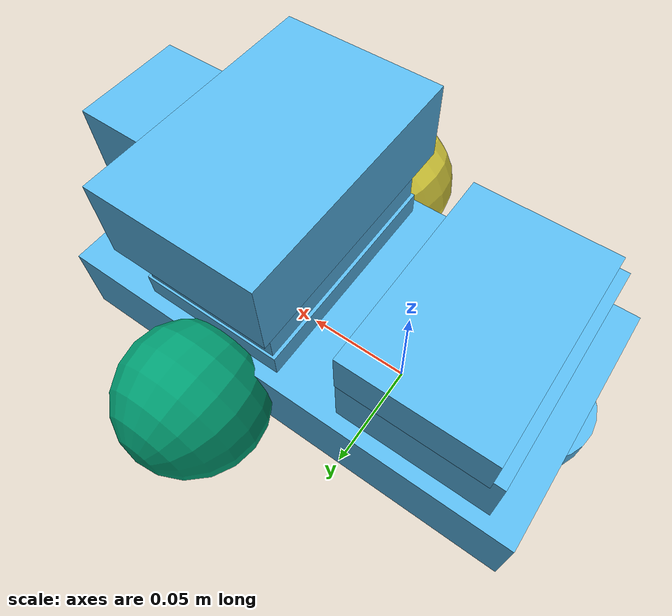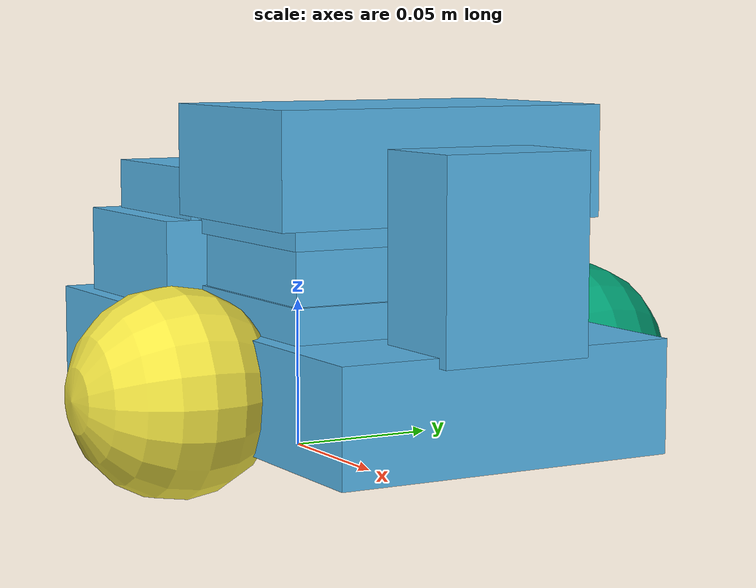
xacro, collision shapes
<?xml version="1.0" ?>
<robot xmlns:xacro="http://ros.org/wiki/xacro">

  <xacro:include filename="$(find lidarbot_description)/urdf/inertial_macros.xacro"/>

  <!-- Robot's base properties -->
  <xacro:property name="base_length" value="0.21"/>
  <xacro:property name="base_width" value="0.11"/>
  <xacro:property name="base_height" value="0.035"/>

  <!-- Robot's wheel properties -->
  <xacro:property name="wheel_radius" value="0.0325"/>
  <xacro:property name="wheel_height" value="0.025"/>
  <xacro:property name="wheel_mass" value="0.031"/>

  <!-- Distance between centre of wheel and robot base -->
  <xacro:property name="wheel_zoff" value="0.0125"/>

  <link name="base_footprint"/>

   <joint name="base_joint" type="fixed">
     <parent link="base_footprint"/>
     <child link="base_link"/>
     <origin xyz="-0.076 0 ${(wheel_radius + wheel_zoff)}" rpy="0 0 0"/>
   </joint>

  <!-- Robot base chasis-->
  <link name="base_link">
      <visual>
        <origin xyz="${base_length/2} 0 ${-wheel_zoff}" rpy="0 0 ${pi}"/>
          <geometry>
              <mesh filename="file://$(find lidarbot_description)/meshes/robot_chassis.dae" />
          </geometry>
      </visual>
      <collision>
        <origin xyz="${base_length/2} 0 ${-wheel_zoff}" rpy="0 0 0"/>
        <geometry>
          <box size="${base_length} ${base_width} ${base_height}"/>
        </geometry>
      </collision>

    <!-- Caster mount -->
      <visual name="caster_mount_visual">
          <origin xyz="0.0185 0 -0.0475" rpy="0 0 0"/>
        <geometry>
          <mesh filename="file://$(find lidarbot_description)/meshes/caster_mount.dae" />
        </geometry>
      </visual>
      <collision name="caster_mount_collision">
        <origin xyz="0.0185 0 -0.005" rpy="0 0 0"/>
        <geometry>
          <cylinder radius="0.023" length="0.0125"/>
        </geometry>
      </collision>

      <!-- Rpi stand -->
      <visual name="rpi_4_stand_visual">
        <origin xyz="0.045 0.015 0.031" rpy="${pi} 0 ${-pi}"/>
          <geometry>
              <mesh filename="file://$(find lidarbot_description)/meshes/rpi_stand.dae" />
          </geometry>
      </visual>
      <collision name="rpi_4_stand_collision">
        <origin xyz="0.045 0 0.017" rpy="0 0 ${pi/2}"/>
        <geometry>
          <box size="0.098 0.065 0.034"/>
        </geometry>
      </collision>

      <!-- Raspberry Pi -->
      <visual name="rpi_4_visual">
        <origin xyz="0.046 0.00245 0.033" rpy="0 0 ${pi/2}"/>
        <geometry>
          <mesh filename="file://$(find lidarbot_description)/meshes/rpi_4.dae"/>
        </geometry>
      </visual>
      <collision name="rpi_4_collision">
        <origin xyz="0.047 0.005 0.041" rpy="0 0 ${pi/2}"/>
        <geometry>
          <box size="0.09 0.06 0.02"/>
        </geometry>
      </collision>

      <!-- Power bank stand -->
      <visual name="power_bank_stand_visual">
        <origin xyz="0.138 0.015 0.031" rpy="${pi} 0 ${pi}"/>
        <geometry>
          <mesh filename="file://$(find lidarbot_description)/meshes/power_bank_stand.dae"/>
        </geometry>
      </visual>
      <collision name="power_bank_stand_collision">
        <origin xyz="0.138 0 0.0085" rpy="0 0 ${pi/2}"/>
        <geometry>
          <box size="0.098 0.065 0.015"/>
        </geometry>
      </collision>

      <!-- Power bank -->
      <visual name="power_bank_visual">
        <origin xyz="0.1685 0.04775 0.015" rpy="0 0 ${pi/2}"/>
        <geometry>
          <mesh filename="file://$(find lidarbot_description)/meshes/power_bank.dae"/>
        </geometry>
      </visual>
      <collision name="power_bank_collision">
        <origin xyz="0.138 0 0.025" rpy="0 0 ${pi/2}"/>
        <geometry>
          <box size="0.096 0.062 0.02"/>
        </geometry>
      </collision>

      <!-- Rplidar stand -->
      <visual name="rplidar_stand_visual">
        <origin xyz="0.138 0.015 0.017" rpy="0 0 ${-2*pi}"/>
        <geometry>
          <mesh filename="file://$(find lidarbot_description)/meshes/rplidar_stand.dae"/>
        </geometry>
      </visual>
      <collision name="rplidar_stand_collision">
        <origin xyz="0.138 0 0.04" rpy="0 0 ${pi/2}"/>
        <geometry>
          <box size="0.098 0.065 0.015"/>
        </geometry>
      </collision>

      <!-- Rplidar base -->
      <visual name="rplidar_base_visual">
        <origin xyz="0.13985 0.0087 0.037" rpy="0 0 ${-pi/2}"/>
          <geometry>
            <mesh filename="file://$(find lidarbot_description)/meshes/rplidar_base.dae"/>
          </geometry>
        </visual>
      <collision name="rplidar_base_collision">
        <origin xyz="0.138 0 0.056" rpy="0 0 ${-pi/2}"/>
        <geometry>
          <box size="0.11 0.072 0.035"/>
        </geometry>
      </collision>

      <!-- Camera mount -->
      <visual name="camera_mount_visual">
        <origin xyz="0.16 0.0335 0.001" rpy="0 0 ${pi}"/>
          <geometry>
            <mesh filename="file://$(find lidarbot_description)/meshes/rpi_camera_mount.dae"/>
          </geometry>
      </visual>
      <collision name="camera_mount_collision">
        <origin xyz="0.197 0.0 0.032" rpy="${pi/2} 0 ${pi/2}"/>
        <geometry>
          <box size="0.048 0.06 0.033"/>
        </geometry>
      </collision>

    <xacro:box_inertia mass="0.864" length="${base_length}" width="${base_width}" height="${base_height}">
      <origin xyz="0.105 0 0.0175" rpy="0 0 0"/>
    </xacro:box_inertia>
  </link>

  <!-- Left wheel -->
  <link name="left_wheel">
    <visual>
        <geometry>
          <mesh filename="file://$(find lidarbot_description)/meshes/right_wheel.dae" />
        </geometry>
    </visual>
    <collision>
      <origin xyz="0 0 -0.0065" rpy="0 0 0"/>
      <geometry>
        <sphere radius="${wheel_radius}"/>
      </geometry>
    </collision>

    <xacro:cylinder_inertia mass="${wheel_mass}" length="${wheel_height}" radius="${wheel_radius}">
      <origin xyz="0 0 0" rpy="0 0 0"/>
    </xacro:cylinder_inertia>
  </link>

  <joint name="left_wheel_joint" type="continuous">
    <parent link="base_link"/>
    <child link="left_wheel"/>
    <origin xyz="0.133 0.065 -${wheel_zoff}" rpy="-${pi/2} 0 ${pi}"/>
    <axis xyz="0 0 -1"/>
  </joint>

  <!-- Right wheel -->
  <link name="right_wheel">
    <visual>
      <geometry>
        <mesh filename="file://$(find lidarbot_description)/meshes/right_wheel.dae"/>
      </geometry>
    </visual>
    <collision>
      <origin xyz="0 0 -0.0065" rpy="0 0 0"/>
      <geometry>
        <sphere radius="${wheel_radius}"/>
      </geometry>
    </collision>

    <xacro:cylinder_inertia mass="${wheel_mass}" length="${wheel_height}" radius="${wheel_radius}">
      <origin xyz="0 0 0" rpy="0 0 0"/>
    </xacro:cylinder_inertia>
  </link>

  <joint name="right_wheel_joint" type="continuous">
    <parent link="base_link"/>
    <child link="right_wheel"/>
    <origin xyz="0.133 -0.065 -${wheel_zoff}" rpy="${pi/2} 0 ${-pi}"/>
    <axis xyz="0 0 1"/>
  </joint>

  <!-- Caster wheel -->
  <link name="caster_wheel">
    <visual>
      <geometry>
        <mesh filename="file://$(find lidarbot_description)/meshes/caster_wheel.dae"/>
      </geometry>
    </visual>
    <collision>
      <origin xyz="0 0 -0.001" rpy="0 0 ${pi/2}"/>
      <geometry>
        <sphere radius="0.015"/>
      </geometry>
    </collision>

    <xacro:sphere_inertia mass="0.033" radius="0.025">
      <origin xyz="0 0 0" rpy="0 0 0"/>
    </xacro:sphere_inertia>
  </link>

  <joint name="caster_wheel_joint" type="fixed">
    <parent link="base_link"/>
    <child link="caster_wheel"/>
    <origin xyz="0.028 0 ${-wheel_zoff - wheel_radius + 0.015 + 0.001}" rpy="0 0 ${pi/2}"/>
  </joint>

  <gazebo reference="caster_wheel">
    <mu1>0.001</mu1>
    <mu2>0.001</mu2>
  </gazebo>

  <gazebo reference="left_wheel">
    <mu1>1.16</mu1>
    <mu2>1.16</mu2>
  </gazebo>

  <gazebo reference="right_wheel">
    <mu1>1.16</mu1>
    <mu2>1.16</mu2>
  </gazebo>

</robot>
